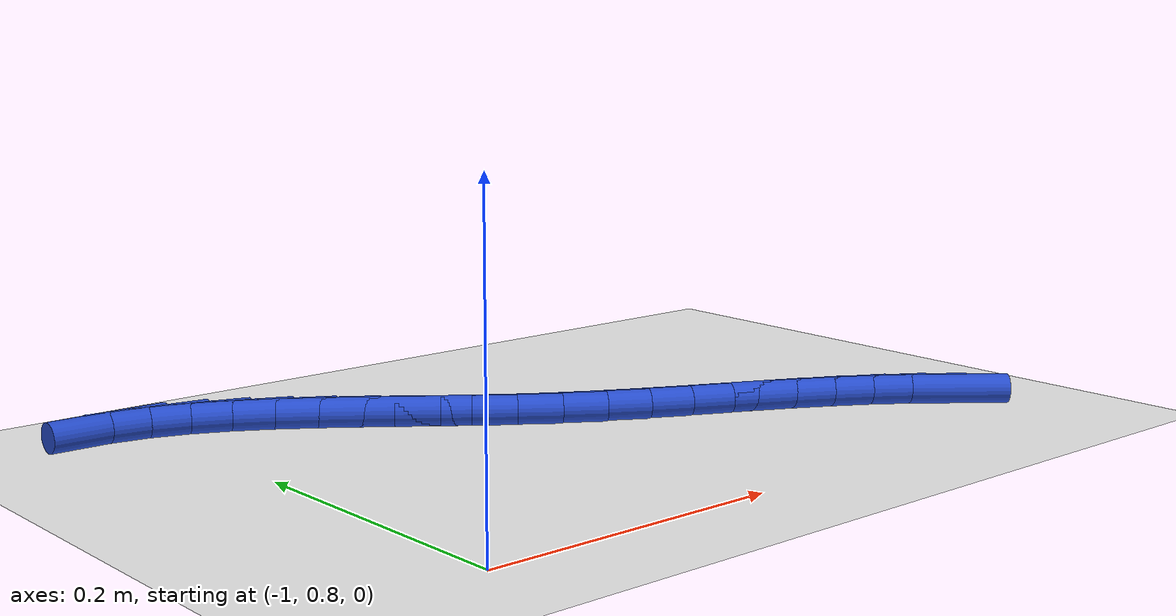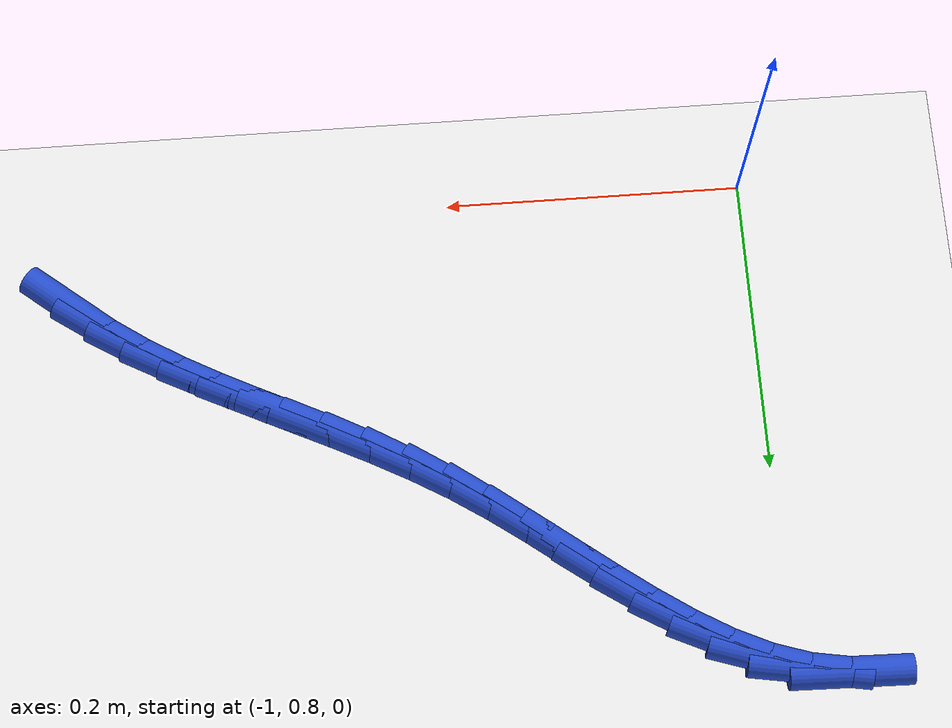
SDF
<sdf version="1.6">
 <world name="default">
  <model name="ground_plane">
   <static>1</static>
   <link name="link">
    <collision name="collision">
     <geometry><plane><normal>0 0 1</normal><size>100 100</size></plane></geometry>
     <surface><friction><ode><mu>100</mu><mu2>50</mu2></ode></friction></surface>
    </collision>
    <visual name="visual">
     <cast_shadows>0</cast_shadows>
     <geometry><plane><normal>0 0 1</normal><size>100 100</size></plane></geometry>
     <material>
      <script><uri>file://media/materials/scripts/gazebo.material</uri><name>Gazebo/WhiteGlow</name></script>
     </material>
    </visual>
   </link>
  </model>
  <model name="line">
   <link name="link_39">
    <pose>-0.5467876738837443 0.8618445111940795 0.01 0 1.57 -0.6765778954506568</pose>
    <collision name="collision">
     <geometry><cylinder><radius>0.01</radius><length>0.08</length></cylinder></geometry>
    </collision>
    <visual name="visual">
     <material>
      <script><name>Gazebo/Blue</name><uri>file://media/materials/scripts/gazebo.material</uri></script>
     </material>
     <geometry><cylinder><radius>0.01</radius><length>0.08</length></cylinder></geometry>
    </visual>
   </link>
   <link name="link_40">
    <pose>-0.56840114780163 0.8792004990527224 0.01 0 1.57 -0.6003460752500569</pose>
    <collision name="collision">
     <geometry><cylinder><radius>0.01</radius><length>0.08</length></cylinder></geometry>
    </collision>
    <visual name="visual">
     <material>
      <script><name>Gazebo/Blue</name><uri>file://media/materials/scripts/gazebo.material</uri></script>
     </material>
     <geometry><cylinder><radius>0.01</radius><length>0.08</length></cylinder></geometry>
    </visual>
   </link>
   <link name="link_41">
    <pose>-0.5911719245562098 0.8947903970959609 0.01 0 1.57 -0.5388591479147657</pose>
    <collision name="collision">
     <geometry><cylinder><radius>0.01</radius><length>0.08</length></cylinder></geometry>
    </collision>
    <visual name="visual">
     <material>
      <script><name>Gazebo/Blue</name><uri>file://media/materials/scripts/gazebo.material</uri></script>
     </material>
     <geometry><cylinder><radius>0.01</radius><length>0.08</length></cylinder></geometry>
    </visual>
   </link>
   <link name="link_42">
    <pose>-0.6149101006261732 0.90898297552423 0.01 0 1.57 -0.49278333056906987</pose>
    <collision name="collision">
     <geometry><cylinder><radius>0.01</radius><length>0.08</length></cylinder></geometry>
    </collision>
    <visual name="visual">
     <material>
      <script><name>Gazebo/Blue</name><uri>file://media/materials/scripts/gazebo.material</uri></script>
     </material>
     <geometry><cylinder><radius>0.01</radius><length>0.08</length></cylinder></geometry>
    </visual>
   </link>
   <link name="link_43">
    <pose>-0.6394257151983435 0.9221470924198305 0.01 0 1.57 -0.4621476209088585</pose>
    <collision name="collision">
     <geometry><cylinder><radius>0.01</radius><length>0.08</length></cylinder></geometry>
    </collision>
    <visual name="visual">
     <material>
      <script><name>Gazebo/Blue</name><uri>file://media/materials/scripts/gazebo.material</uri></script>
     </material>
     <geometry><cylinder><radius>0.01</radius><length>0.08</length></cylinder></geometry>
    </visual>
   </link>
   <link name="link_44">
    <pose>-0.6645288074595429 0.9346516058650617 0.01 0 1.57 -0.44667426147891953</pose>
    <collision name="collision">
     <geometry><cylinder><radius>0.01</radius><length>0.08</length></cylinder></geometry>
    </collision>
    <visual name="visual">
     <material>
      <script><name>Gazebo/Blue</name><uri>file://media/materials/scripts/gazebo.material</uri></script>
     </material>
     <geometry><cylinder><radius>0.01</radius><length>0.08</length></cylinder></geometry>
    </visual>
   </link>
   <link name="link_45">
    <pose>-0.690029416596595 0.9468653739422237 0.01 0 1.57 -0.44600016813956495</pose>
    <collision name="collision">
     <geometry><cylinder><radius>0.01</radius><length>0.08</length></cylinder></geometry>
    </collision>
    <visual name="visual">
     <material>
      <script><name>Gazebo/Blue</name><uri>file://media/materials/scripts/gazebo.material</uri></script>
     </material>
     <geometry><cylinder><radius>0.01</radius><length>0.08</length></cylinder></geometry>
    </visual>
   </link>
   <link name="link_46">
    <pose>-0.7157375817963224 0.9591572547336165 0.01 0 1.57 -0.4597832282691294</pose>
    <collision name="collision">
     <geometry><cylinder><radius>0.01</radius><length>0.08</length></cylinder></geometry>
    </collision>
    <visual name="visual">
     <material>
      <script><name>Gazebo/Blue</name><uri>file://media/materials/scripts/gazebo.material</uri></script>
     </material>
     <geometry><cylinder><radius>0.01</radius><length>0.08</length></cylinder></geometry>
    </visual>
   </link>
   <link name="link_47">
    <pose>-0.7414633422455478 0.9718961063215394 0.01 0 1.57 -0.48770623037120814</pose>
    <collision name="collision">
     <geometry><cylinder><radius>0.01</radius><length>0.08</length></cylinder></geometry>
    </collision>
    <visual name="visual">
     <material>
      <script><name>Gazebo/Blue</name><uri>file://media/materials/scripts/gazebo.material</uri></script>
     </material>
     <geometry><cylinder><radius>0.01</radius><length>0.08</length></cylinder></geometry>
    </visual>
   </link>
   <link name="link_48">
    <pose>-0.7670167371310941 0.9854507867882927 0.01 0 1.57 -0.5293937356290136</pose>
    <collision name="collision">
     <geometry><cylinder><radius>0.01</radius><length>0.08</length></cylinder></geometry>
    </collision>
    <visual name="visual">
     <material>
      <script><name>Gazebo/Blue</name><uri>file://media/materials/scripts/gazebo.material</uri></script>
     </material>
     <geometry><cylinder><radius>0.01</radius><length>0.08</length></cylinder></geometry>
    </visual>
   </link>
   <link name="link_49">
    <pose>-0.7922078056397843 1.000190154216176 0.01 0 1.57 -0.5822283979352211</pose>
    <collision name="collision">
     <geometry><cylinder><radius>0.01</radius><length>0.08</length></cylinder></geometry>
    </collision>
    <visual name="visual">
     <material>
      <script><name>Gazebo/Blue</name><uri>file://media/materials/scripts/gazebo.material</uri></script>
     </material>
     <geometry><cylinder><radius>0.01</radius><length>0.08</length></cylinder></geometry>
    </visual>
   </link>
   <link name="link_50">
    <pose>-0.8168665175469945 1.0164244154298157 0.01 0 1.57 -0.6253963363454006</pose>
    <collision name="collision">
     <geometry><cylinder><radius>0.01</radius><length>0.08</length></cylinder></geometry>
    </collision>
    <visual name="visual">
     <material>
      <script><name>Gazebo/Blue</name><uri>file://media/materials/scripts/gazebo.material</uri></script>
     </material>
     <geometry><cylinder><radius>0.01</radius><length>0.08</length></cylinder></geometry>
    </visual>
   </link>
   <link name="link_51">
    <pose>-0.8410249796978941 1.033868933135995 0.01 0 1.57 -0.6480030467167569</pose>
    <collision name="collision">
     <geometry><cylinder><radius>0.01</radius><length>0.08</length></cylinder></geometry>
    </collision>
    <visual name="visual">
     <material>
      <script><name>Gazebo/Blue</name><uri>file://media/materials/scripts/gazebo.material</uri></script>
     </material>
     <geometry><cylinder><radius>0.01</radius><length>0.08</length></cylinder></geometry>
    </visual>
   </link>
   <link name="link_52">
    <pose>-0.8648329224470125 1.051892930401041 0.01 0 1.57 -0.6505644837466987</pose>
    <collision name="collision">
     <geometry><cylinder><radius>0.01</radius><length>0.08</length></cylinder></geometry>
    </collision>
    <visual name="visual">
     <material>
      <script><name>Gazebo/Blue</name><uri>file://media/materials/scripts/gazebo.material</uri></script>
     </material>
     <geometry><cylinder><radius>0.01</radius><length>0.08</length></cylinder></geometry>
    </visual>
   </link>
   <link name="link_53">
    <pose>-0.8884415345571675 1.069861338522366 0.01 0 1.57 -0.632750825114743</pose>
    <collision name="collision">
     <geometry><cylinder><radius>0.01</radius><length>0.08</length></cylinder></geometry>
    </collision>
    <visual name="visual">
     <material>
      <script><name>Gazebo/Blue</name><uri>file://media/materials/scripts/gazebo.material</uri></script>
     </material>
     <geometry><cylinder><radius>0.01</radius><length>0.08</length></cylinder></geometry>
    </visual>
   </link>
   <link name="link_54">
    <pose>-0.9120020047911771 1.087139088797384 0.01 0 1.57 -0.5931441005881991</pose>
    <collision name="collision">
     <geometry><cylinder><radius>0.01</radius><length>0.08</length></cylinder></geometry>
    </collision>
    <visual name="visual">
     <material>
      <script><name>Gazebo/Blue</name><uri>file://media/materials/scripts/gazebo.material</uri></script>
     </material>
     <geometry><cylinder><radius>0.01</radius><length>0.08</length></cylinder></geometry>
    </visual>
   </link>
   <link name="link_55">
    <pose>-0.9356655219118594 1.103091112523507 0.01 0 1.57 -0.5292966073430971</pose>
    <collision name="collision">
     <geometry><cylinder><radius>0.01</radius><length>0.08</length></cylinder></geometry>
    </collision>
    <visual name="visual">
     <material>
      <script><name>Gazebo/Blue</name><uri>file://media/materials/scripts/gazebo.material</uri></script>
     </material>
     <geometry><cylinder><radius>0.01</radius><length>0.08</length></cylinder></geometry>
    </visual>
   </link>
   <link name="link_56">
    <pose>-0.959583274682032 1.117082340998149 0.01 0 1.57 -0.43813009316804685</pose>
    <collision name="collision">
     <geometry><cylinder><radius>0.01</radius><length>0.08</length></cylinder></geometry>
    </collision>
    <visual name="visual">
     <material>
      <script><name>Gazebo/Blue</name><uri>file://media/materials/scripts/gazebo.material</uri></script>
     </material>
     <geometry><cylinder><radius>0.01</radius><length>0.08</length></cylinder></geometry>
    </visual>
   </link>
   <link name="link_57">
    <pose>-0.9839064518645135 1.1284777055187225 0.01 0 1.57 -0.3170829914901307</pose>
    <collision name="collision">
     <geometry><cylinder><radius>0.01</radius><length>0.08</length></cylinder></geometry>
    </collision>
    <visual name="visual">
     <material>
      <script><name>Gazebo/Blue</name><uri>file://media/materials/scripts/gazebo.material</uri></script>
     </material>
     <geometry><cylinder><radius>0.01</radius><length>0.08</length></cylinder></geometry>
    </visual>
   </link>
   <link name="link_58">
    <pose>-1.0087862422221214 1.1366421373826407 0.01 0 1.57 -0.16775414747583386</pose>
    <collision name="collision">
     <geometry><cylinder><radius>0.01</radius><length>0.08</length></cylinder></geometry>
    </collision>
    <visual name="visual">
     <material>
      <script><name>Gazebo/Blue</name><uri>file://media/materials/scripts/gazebo.material</uri></script>
     </material>
     <geometry><cylinder><radius>0.01</radius><length>0.08</length></cylinder></geometry>
    </visual>
   </link>
   <link name="link_59">
    <pose>-1.0343667691493539 1.1409740891177365 0.01 0 1.57 -0.019884113593531202</pose>
    <collision name="collision">
     <geometry><cylinder><radius>0.01</radius><length>0.08</length></cylinder></geometry>
    </collision>
    <visual name="visual">
     <material>
      <script><name>Gazebo/Blue</name><uri>file://media/materials/scripts/gazebo.material</uri></script>
     </material>
     <geometry><cylinder><radius>0.01</radius><length>0.08</length></cylinder></geometry>
    </visual>
   </link>
  </model>
 </world>
</sdf>
